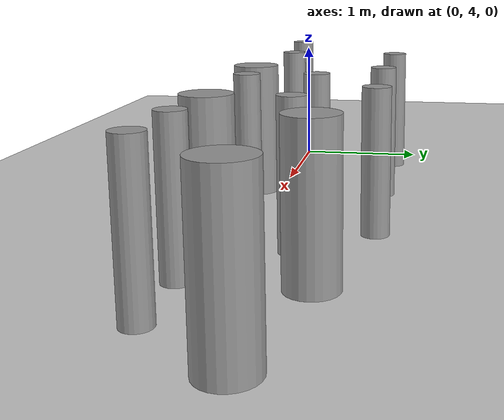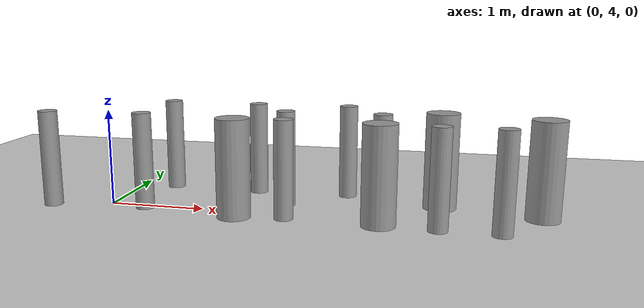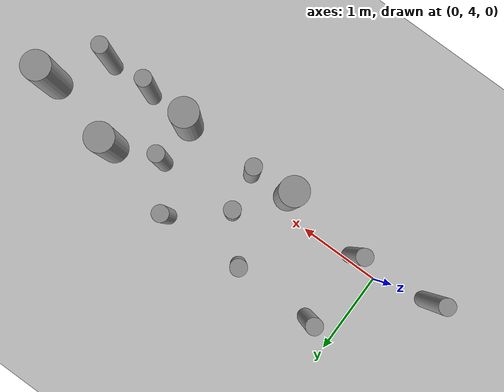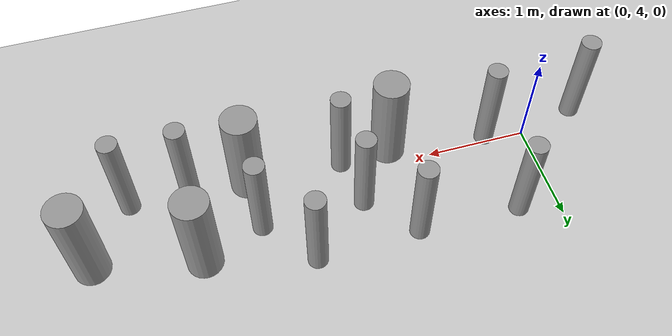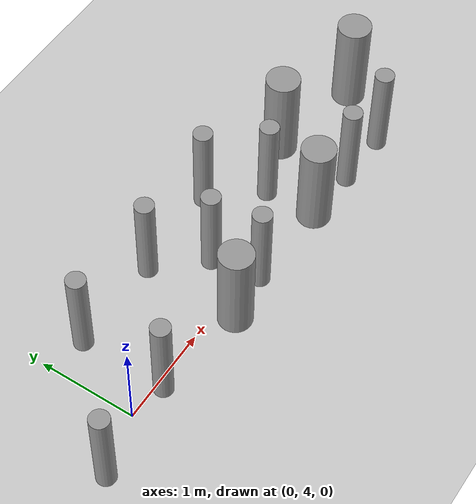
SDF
<sdf version="1.6">
 <world name="default">
  <model name="ground_plane">
   <static>1</static>
   <link name="link">
    <collision name="collision">
     <geometry><plane><normal>0 0 1</normal><size>100 100</size></plane></geometry>
     <surface><friction><ode><mu>100</mu><mu2>50</mu2></ode></friction></surface>
    </collision>
    <visual name="visual">
     <cast_shadows>0</cast_shadows>
     <geometry><plane><normal>0 0 1</normal><size>100 100</size></plane></geometry>
     <material>
      <script><uri>file://media/materials/scripts/gazebo.material</uri><name>Gazebo/Grey</name></script>
     </material>
    </visual>
   </link>
  </model>
  <model name="cyl_wall_clone_clone_3_clone_2">
   <link name="link_0">
    <pose>-2.73893 -0.366465 0 0 -0 0</pose>
    <inertial>
     <mass>0.0374993</mass>
     <inertia>
      <ixx>0.00321281</ixx>
      <ixy>0</ixy>
      <ixz>0</ixz>
      <iyy>0.00321281</iyy>
      <iyz>0</iyz>
      <izz>0.000175774</izz>
     </inertia>
    </inertial>
    <visual name="visual">
     <geometry><cylinder><radius>0.0968661</radius><length>1</length></cylinder></geometry>
     <material>
      <lighting>1</lighting>
      <script><uri>file://media/materials/scripts/gazebo.material</uri><name>Gazebo/Grey</name></script>
      <ambient>0.3 0.3 0.3 1</ambient>
      <diffuse>0.7 0.7 0.7 1</diffuse>
      <specular>0.01 0.01 0.01 1</specular>
      <emissive>0 0 0 1</emissive>
     </material>
    </visual>
    <collision name="collision">
     <geometry><cylinder><radius>0.096866</radius><length>1</length></cylinder></geometry>
     <surface>
      <friction>
       <ode><mu>1</mu><mu2>1</mu2><fdir1>0 0 0</fdir1><slip1>0</slip1><slip2>0</slip2></ode>
       <torsional>
        <coefficient>1</coefficient>
        <patch_radius>0</patch_radius>
        <surface_radius>0</surface_radius>
        <use_patch_radius>1</use_patch_radius>
        <ode><slip>0</slip></ode>
       </torsional>
      </friction>
      <bounce><restitution_coefficient>0</restitution_coefficient><threshold>1e+06</threshold></bounce>
      <contact>
       <collide_without_contact>0</collide_without_contact>
       <collide_without_contact_bitmask>1</collide_without_contact_bitmask>
       <collide_bitmask>1</collide_bitmask>
       <ode>
        <soft_cfm>0</soft_cfm>
        <soft_erp>0.2</soft_erp>
        <kp>1e+13</kp>
        <kd>1</kd>
        <max_vel>0.01</max_vel>
        <min_depth>0</min_depth>
       </ode>
       <bullet>
        <split_impulse>1</split_impulse>
        <split_impulse_penetration_threshold>-0.01</split_impulse_penetration_threshold>
        <soft_cfm>0</soft_cfm>
        <soft_erp>0.2</soft_erp>
        <kp>1e+13</kp>
        <kd>1</kd>
       </bullet>
      </contact>
     </surface>
    </collision>
   </link>
   <link name="link_0_clone">
    <pose>-1.73893 0.61877 0 0 -0 0</pose>
    <inertial>
     <mass>0.0374993</mass>
     <inertia>
      <ixx>0.00321281</ixx>
      <ixy>0</ixy>
      <ixz>0</ixz>
      <iyy>0.00321281</iyy>
      <iyz>0</iyz>
      <izz>0.000175774</izz>
     </inertia>
    </inertial>
    <visual name="visual">
     <geometry><cylinder><radius>0.0968661</radius><length>1</length></cylinder></geometry>
     <material>
      <lighting>1</lighting>
      <script><uri>file://media/materials/scripts/gazebo.material</uri><name>Gazebo/Grey</name></script>
      <ambient>0.3 0.3 0.3 1</ambient>
      <diffuse>0.7 0.7 0.7 1</diffuse>
      <specular>0.01 0.01 0.01 1</specular>
      <emissive>0 0 0 1</emissive>
      <shader type="pixel"/>
     </material>
    </visual>
    <collision name="collision">
     <geometry><cylinder><radius>0.096866</radius><length>1</length></cylinder></geometry>
     <surface>
      <friction>
       <ode><mu>1</mu><mu2>1</mu2><fdir1>0 0 0</fdir1><slip1>0</slip1><slip2>0</slip2></ode>
       <torsional>
        <coefficient>1</coefficient>
        <patch_radius>0</patch_radius>
        <surface_radius>0</surface_radius>
        <use_patch_radius>1</use_patch_radius>
        <ode><slip>0</slip></ode>
       </torsional>
      </friction>
      <bounce><restitution_coefficient>0</restitution_coefficient><threshold>1e+06</threshold></bounce>
      <contact>
       <collide_without_contact>0</collide_without_contact>
       <collide_without_contact_bitmask>1</collide_without_contact_bitmask>
       <collide_bitmask>1</collide_bitmask>
       <ode>
        <soft_cfm>0</soft_cfm>
        <soft_erp>0.2</soft_erp>
        <kp>1e+13</kp>
        <kd>1</kd>
        <max_vel>0.01</max_vel>
        <min_depth>0</min_depth>
       </ode>
       <bullet>
        <split_impulse>1</split_impulse>
        <split_impulse_penetration_threshold>-0.01</split_impulse_penetration_threshold>
        <soft_cfm>0</soft_cfm>
        <soft_erp>0.2</soft_erp>
        <kp>1e+13</kp>
        <kd>1</kd>
       </bullet>
      </contact>
     </surface>
    </collision>
   </link>
   <link name="link_0_clone_clone">
    <pose>-0.327073 0.143919 0 0 -0 0</pose>
    <inertial>
     <mass>0.0374993</mass>
     <inertia>
      <ixx>0.00321281</ixx>
      <ixy>0</ixy>
      <ixz>0</ixz>
      <iyy>0.00321281</iyy>
      <iyz>0</iyz>
      <izz>0.000175774</izz>
     </inertia>
    </inertial>
    <visual name="visual">
     <geometry><cylinder><radius>0.0968661</radius><length>1</length></cylinder></geometry>
     <material>
      <lighting>1</lighting>
      <script><uri>file://media/materials/scripts/gazebo.material</uri><name>Gazebo/Grey</name></script>
      <ambient>0.3 0.3 0.3 1</ambient>
      <diffuse>0.7 0.7 0.7 1</diffuse>
      <specular>0.01 0.01 0.01 1</specular>
      <emissive>0 0 0 1</emissive>
      <shader type="pixel"/>
     </material>
    </visual>
    <collision name="collision">
     <geometry><cylinder><radius>0.096866</radius><length>1</length></cylinder></geometry>
     <surface>
      <friction>
       <ode><mu>1</mu><mu2>1</mu2><fdir1>0 0 0</fdir1><slip1>0</slip1><slip2>0</slip2></ode>
       <torsional>
        <coefficient>1</coefficient>
        <patch_radius>0</patch_radius>
        <surface_radius>0</surface_radius>
        <use_patch_radius>1</use_patch_radius>
        <ode><slip>0</slip></ode>
       </torsional>
      </friction>
      <bounce><restitution_coefficient>0</restitution_coefficient><threshold>1e+06</threshold></bounce>
      <contact>
       <collide_without_contact>0</collide_without_contact>
       <collide_without_contact_bitmask>1</collide_without_contact_bitmask>
       <collide_bitmask>1</collide_bitmask>
       <ode>
        <soft_cfm>0</soft_cfm>
        <soft_erp>0.2</soft_erp>
        <kp>1e+13</kp>
        <kd>1</kd>
        <max_vel>0.01</max_vel>
        <min_depth>0</min_depth>
       </ode>
       <bullet>
        <split_impulse>1</split_impulse>
        <split_impulse_penetration_threshold>-0.01</split_impulse_penetration_threshold>
        <soft_cfm>0</soft_cfm>
        <soft_erp>0.2</soft_erp>
        <kp>1e+13</kp>
        <kd>1</kd>
       </bullet>
      </contact>
     </surface>
    </collision>
   </link>
   <link name="link_0_clone_clone_0">
    <pose>1.26107 -0.419359 0 0 -0 0</pose>
    <inertial>
     <mass>0.0374993</mass>
     <inertia>
      <ixx>0.00321281</ixx>
      <ixy>0</ixy>
      <ixz>0</ixz>
      <iyy>0.00321281</iyy>
      <iyz>0</iyz>
      <izz>0.000175774</izz>
     </inertia>
    </inertial>
    <visual name="visual">
     <geometry><cylinder><radius>0.0968661</radius><length>1</length></cylinder></geometry>
     <material>
      <lighting>1</lighting>
      <script><uri>file://media/materials/scripts/gazebo.material</uri><name>Gazebo/Grey</name></script>
      <ambient>0.3 0.3 0.3 1</ambient>
      <diffuse>0.7 0.7 0.7 1</diffuse>
      <specular>0.01 0.01 0.01 1</specular>
      <emissive>0 0 0 1</emissive>
      <shader type="pixel"/>
     </material>
    </visual>
    <collision name="collision">
     <geometry><cylinder><radius>0.096866</radius><length>1</length></cylinder></geometry>
     <surface>
      <friction>
       <ode><mu>1</mu><mu2>1</mu2><fdir1>0 0 0</fdir1><slip1>0</slip1><slip2>0</slip2></ode>
       <torsional>
        <coefficient>1</coefficient>
        <patch_radius>0</patch_radius>
        <surface_radius>0</surface_radius>
        <use_patch_radius>1</use_patch_radius>
        <ode><slip>0</slip></ode>
       </torsional>
      </friction>
      <bounce><restitution_coefficient>0</restitution_coefficient><threshold>1e+06</threshold></bounce>
      <contact>
       <collide_without_contact>0</collide_without_contact>
       <collide_without_contact_bitmask>1</collide_without_contact_bitmask>
       <collide_bitmask>1</collide_bitmask>
       <ode>
        <soft_cfm>0</soft_cfm>
        <soft_erp>0.2</soft_erp>
        <kp>1e+13</kp>
        <kd>1</kd>
        <max_vel>0.01</max_vel>
        <min_depth>0</min_depth>
       </ode>
       <bullet>
        <split_impulse>1</split_impulse>
        <split_impulse_penetration_threshold>-0.01</split_impulse_penetration_threshold>
        <soft_cfm>0</soft_cfm>
        <soft_erp>0.2</soft_erp>
        <kp>1e+13</kp>
        <kd>1</kd>
       </bullet>
      </contact>
     </surface>
    </collision>
   </link>
   <link name="link_0_clone_clone_1">
    <pose>-1.73893 -0.277168 0 0 -0 0</pose>
    <inertial>
     <mass>0.0374993</mass>
     <inertia>
      <ixx>0.00321281</ixx>
      <ixy>0</ixy>
      <ixz>0</ixz>
      <iyy>0.00321281</iyy>
      <iyz>0</iyz>
      <izz>0.000175774</izz>
     </inertia>
    </inertial>
    <visual name="visual">
     <geometry><cylinder><radius>0.0968661</radius><length>1</length></cylinder></geometry>
     <material>
      <lighting>1</lighting>
      <script><uri>file://media/materials/scripts/gazebo.material</uri><name>Gazebo/Grey</name></script>
      <ambient>0.3 0.3 0.3 1</ambient>
      <diffuse>0.7 0.7 0.7 1</diffuse>
      <specular>0.01 0.01 0.01 1</specular>
      <emissive>0 0 0 1</emissive>
      <shader type="pixel"/>
     </material>
    </visual>
    <collision name="collision">
     <geometry><cylinder><radius>0.096866</radius><length>1</length></cylinder></geometry>
     <surface>
      <friction>
       <ode><mu>1</mu><mu2>1</mu2><fdir1>0 0 0</fdir1><slip1>0</slip1><slip2>0</slip2></ode>
       <torsional>
        <coefficient>1</coefficient>
        <patch_radius>0</patch_radius>
        <surface_radius>0</surface_radius>
        <use_patch_radius>1</use_patch_radius>
        <ode><slip>0</slip></ode>
       </torsional>
      </friction>
      <bounce><restitution_coefficient>0</restitution_coefficient><threshold>1e+06</threshold></bounce>
      <contact>
       <collide_without_contact>0</collide_without_contact>
       <collide_without_contact_bitmask>1</collide_without_contact_bitmask>
       <collide_bitmask>1</collide_bitmask>
       <ode>
        <soft_cfm>0</soft_cfm>
        <soft_erp>0.2</soft_erp>
        <kp>1e+13</kp>
        <kd>1</kd>
        <max_vel>0.01</max_vel>
        <min_depth>0</min_depth>
       </ode>
       <bullet>
        <split_impulse>1</split_impulse>
        <split_impulse_penetration_threshold>-0.01</split_impulse_penetration_threshold>
        <soft_cfm>0</soft_cfm>
        <soft_erp>0.2</soft_erp>
        <kp>1e+13</kp>
        <kd>1</kd>
       </bullet>
      </contact>
     </surface>
    </collision>
   </link>
   <link name="link_0_clone_clone_2">
    <pose>-0.738934 0.593961 0 0 -0 0</pose>
    <inertial>
     <mass>0.0374993</mass>
     <inertia>
      <ixx>0.00321281</ixx>
      <ixy>0</ixy>
      <ixz>0</ixz>
      <iyy>0.00321281</iyy>
      <iyz>0</iyz>
      <izz>0.000175774</izz>
     </inertia>
    </inertial>
    <visual name="visual">
     <geometry><cylinder><radius>0.0968661</radius><length>1</length></cylinder></geometry>
     <material>
      <lighting>1</lighting>
      <script><uri>file://media/materials/scripts/gazebo.material</uri><name>Gazebo/Grey</name></script>
      <ambient>0.3 0.3 0.3 1</ambient>
      <diffuse>0.7 0.7 0.7 1</diffuse>
      <specular>0.01 0.01 0.01 1</specular>
      <emissive>0 0 0 1</emissive>
      <shader type="pixel"/>
     </material>
    </visual>
    <collision name="collision">
     <geometry><cylinder><radius>0.096866</radius><length>1</length></cylinder></geometry>
     <surface>
      <friction>
       <ode><mu>1</mu><mu2>1</mu2><fdir1>0 0 0</fdir1><slip1>0</slip1><slip2>0</slip2></ode>
       <torsional>
        <coefficient>1</coefficient>
        <patch_radius>0</patch_radius>
        <surface_radius>0</surface_radius>
        <use_patch_radius>1</use_patch_radius>
        <ode><slip>0</slip></ode>
       </torsional>
      </friction>
      <bounce><restitution_coefficient>0</restitution_coefficient><threshold>1e+06</threshold></bounce>
      <contact>
       <collide_without_contact>0</collide_without_contact>
       <collide_without_contact_bitmask>1</collide_without_contact_bitmask>
       <collide_bitmask>1</collide_bitmask>
       <ode>
        <soft_cfm>0</soft_cfm>
        <soft_erp>0.2</soft_erp>
        <kp>1e+13</kp>
        <kd>1</kd>
        <max_vel>0.01</max_vel>
        <min_depth>0</min_depth>
       </ode>
       <bullet>
        <split_impulse>1</split_impulse>
        <split_impulse_penetration_threshold>-0.01</split_impulse_penetration_threshold>
        <soft_cfm>0</soft_cfm>
        <soft_erp>0.2</soft_erp>
        <kp>1e+13</kp>
        <kd>1</kd>
       </bullet>
      </contact>
     </surface>
    </collision>
   </link>
   <link name="link_0_clone_clone_3">
    <pose>0.261066 0.624849 0 0 -0 0</pose>
    <inertial>
     <mass>0.0374993</mass>
     <inertia>
      <ixx>0.00321281</ixx>
      <ixy>0</ixy>
      <ixz>0</ixz>
      <iyy>0.00321281</iyy>
      <iyz>0</iyz>
      <izz>0.000175774</izz>
     </inertia>
    </inertial>
    <visual name="visual">
     <geometry><cylinder><radius>0.0968661</radius><length>1</length></cylinder></geometry>
     <material>
      <lighting>1</lighting>
      <script><uri>file://media/materials/scripts/gazebo.material</uri><name>Gazebo/Grey</name></script>
      <ambient>0.3 0.3 0.3 1</ambient>
      <diffuse>0.7 0.7 0.7 1</diffuse>
      <specular>0.01 0.01 0.01 1</specular>
      <emissive>0 0 0 1</emissive>
      <shader type="pixel"/>
     </material>
    </visual>
    <collision name="collision">
     <geometry><cylinder><radius>0.096866</radius><length>1</length></cylinder></geometry>
     <surface>
      <friction>
       <ode><mu>1</mu><mu2>1</mu2><fdir1>0 0 0</fdir1><slip1>0</slip1><slip2>0</slip2></ode>
       <torsional>
        <coefficient>1</coefficient>
        <patch_radius>0</patch_radius>
        <surface_radius>0</surface_radius>
        <use_patch_radius>1</use_patch_radius>
        <ode><slip>0</slip></ode>
       </torsional>
      </friction>
      <bounce><restitution_coefficient>0</restitution_coefficient><threshold>1e+06</threshold></bounce>
      <contact>
       <collide_without_contact>0</collide_without_contact>
       <collide_without_contact_bitmask>1</collide_without_contact_bitmask>
       <collide_bitmask>1</collide_bitmask>
       <ode>
        <soft_cfm>0</soft_cfm>
        <soft_erp>0.2</soft_erp>
        <kp>1e+13</kp>
        <kd>1</kd>
        <max_vel>0.01</max_vel>
        <min_depth>0</min_depth>
       </ode>
       <bullet>
        <split_impulse>1</split_impulse>
        <split_impulse_penetration_threshold>-0.01</split_impulse_penetration_threshold>
        <soft_cfm>0</soft_cfm>
        <soft_erp>0.2</soft_erp>
        <kp>1e+13</kp>
        <kd>1</kd>
       </bullet>
      </contact>
     </surface>
    </collision>
   </link>
   <link name="link_0_clone_clone_4">
    <pose>-0.239049 -0.353105 0 0 -0 0</pose>
    <inertial>
     <mass>0.0374993</mass>
     <inertia>
      <ixx>0.00321281</ixx>
      <ixy>0</ixy>
      <ixz>0</ixz>
      <iyy>0.00321281</iyy>
      <iyz>0</iyz>
      <izz>0.000175774</izz>
     </inertia>
    </inertial>
    <visual name="visual">
     <geometry><cylinder><radius>0.0968661</radius><length>1</length></cylinder></geometry>
     <material>
      <lighting>1</lighting>
      <script><uri>file://media/materials/scripts/gazebo.material</uri><name>Gazebo/Grey</name></script>
      <ambient>0.3 0.3 0.3 1</ambient>
      <diffuse>0.7 0.7 0.7 1</diffuse>
      <specular>0.01 0.01 0.01 1</specular>
      <emissive>0 0 0 1</emissive>
      <shader type="pixel"/>
     </material>
    </visual>
    <collision name="collision">
     <geometry><cylinder><radius>0.096866</radius><length>1</length></cylinder></geometry>
     <surface>
      <friction>
       <ode><mu>1</mu><mu2>1</mu2><fdir1>0 0 0</fdir1><slip1>0</slip1><slip2>0</slip2></ode>
       <torsional>
        <coefficient>1</coefficient>
        <patch_radius>0</patch_radius>
        <surface_radius>0</surface_radius>
        <use_patch_radius>1</use_patch_radius>
        <ode><slip>0</slip></ode>
       </torsional>
      </friction>
      <bounce><restitution_coefficient>0</restitution_coefficient><threshold>1e+06</threshold></bounce>
      <contact>
       <collide_without_contact>0</collide_without_contact>
       <collide_without_contact_bitmask>1</collide_without_contact_bitmask>
       <collide_bitmask>1</collide_bitmask>
       <ode>
        <soft_cfm>0</soft_cfm>
        <soft_erp>0.2</soft_erp>
        <kp>1e+13</kp>
        <kd>1</kd>
        <max_vel>0.01</max_vel>
        <min_depth>0</min_depth>
       </ode>
       <bullet>
        <split_impulse>1</split_impulse>
        <split_impulse_penetration_threshold>-0.01</split_impulse_penetration_threshold>
        <soft_cfm>0</soft_cfm>
        <soft_erp>0.2</soft_erp>
        <kp>1e+13</kp>
        <kd>1</kd>
       </bullet>
      </contact>
     </surface>
    </collision>
   </link>
   <link name="link_0_clone_clone_5">
    <pose>0.672792 0.143919 0 0 -0 0</pose>
    <inertial>
     <mass>0.0374993</mass>
     <inertia>
      <ixx>0.00321281</ixx>
      <ixy>0</ixy>
      <ixz>0</ixz>
      <iyy>0.00321281</iyy>
      <iyz>0</iyz>
      <izz>0.000175774</izz>
     </inertia>
    </inertial>
    <visual name="visual">
     <geometry><cylinder><radius>0.0968661</radius><length>1</length></cylinder></geometry>
     <material>
      <lighting>1</lighting>
      <script><uri>file://media/materials/scripts/gazebo.material</uri><name>Gazebo/Grey</name></script>
      <ambient>0.3 0.3 0.3 1</ambient>
      <diffuse>0.7 0.7 0.7 1</diffuse>
      <specular>0.01 0.01 0.01 1</specular>
      <emissive>0 0 0 1</emissive>
      <shader type="pixel"/>
     </material>
    </visual>
    <collision name="collision">
     <geometry><cylinder><radius>0.096866</radius><length>1</length></cylinder></geometry>
     <surface>
      <friction>
       <ode><mu>1</mu><mu2>1</mu2><fdir1>0 0 0</fdir1><slip1>0</slip1><slip2>0</slip2></ode>
       <torsional>
        <coefficient>1</coefficient>
        <patch_radius>0</patch_radius>
        <surface_radius>0</surface_radius>
        <use_patch_radius>1</use_patch_radius>
        <ode><slip>0</slip></ode>
       </torsional>
      </friction>
      <bounce><restitution_coefficient>0</restitution_coefficient><threshold>1e+06</threshold></bounce>
      <contact>
       <collide_without_contact>0</collide_without_contact>
       <collide_without_contact_bitmask>1</collide_without_contact_bitmask>
       <collide_bitmask>1</collide_bitmask>
       <ode>
        <soft_cfm>0</soft_cfm>
        <soft_erp>0.2</soft_erp>
        <kp>1e+13</kp>
        <kd>1</kd>
        <max_vel>0.01</max_vel>
        <min_depth>0</min_depth>
       </ode>
       <bullet>
        <split_impulse>1</split_impulse>
        <split_impulse_penetration_threshold>-0.01</split_impulse_penetration_threshold>
        <soft_cfm>0</soft_cfm>
        <soft_erp>0.2</soft_erp>
        <kp>1e+13</kp>
        <kd>1</kd>
       </bullet>
      </contact>
     </surface>
    </collision>
   </link>
   <link name="link_0_clone_clone_6">
    <pose>1.84596 -0.433423 0 0 -0 0</pose>
    <inertial>
     <mass>0.0374993</mass>
     <inertia>
      <ixx>0.00321281</ixx>
      <ixy>0</ixy>
      <ixz>0</ixz>
      <iyy>0.00321281</iyy>
      <iyz>0</iyz>
      <izz>0.000175774</izz>
     </inertia>
    </inertial>
    <visual name="visual">
     <geometry><cylinder><radius>0.0968661</radius><length>1</length></cylinder></geometry>
     <material>
      <lighting>1</lighting>
      <script><uri>file://media/materials/scripts/gazebo.material</uri><name>Gazebo/Grey</name></script>
      <ambient>0.3 0.3 0.3 1</ambient>
      <diffuse>0.7 0.7 0.7 1</diffuse>
      <specular>0.01 0.01 0.01 1</specular>
      <emissive>0 0 0 1</emissive>
      <shader type="pixel"/>
     </material>
    </visual>
    <collision name="collision">
     <geometry><cylinder><radius>0.096866</radius><length>1</length></cylinder></geometry>
     <surface>
      <friction>
       <ode><mu>1</mu><mu2>1</mu2><fdir1>0 0 0</fdir1><slip1>0</slip1><slip2>0</slip2></ode>
       <torsional>
        <coefficient>1</coefficient>
        <patch_radius>0</patch_radius>
        <surface_radius>0</surface_radius>
        <use_patch_radius>1</use_patch_radius>
        <ode><slip>0</slip></ode>
       </torsional>
      </friction>
      <bounce><restitution_coefficient>0</restitution_coefficient><threshold>1e+06</threshold></bounce>
      <contact>
       <collide_without_contact>0</collide_without_contact>
       <collide_without_contact_bitmask>1</collide_without_contact_bitmask>
       <collide_bitmask>1</collide_bitmask>
       <ode>
        <soft_cfm>0</soft_cfm>
        <soft_erp>0.2</soft_erp>
        <kp>1e+13</kp>
        <kd>1</kd>
        <max_vel>0.01</max_vel>
        <min_depth>0</min_depth>
       </ode>
       <bullet>
        <split_impulse>1</split_impulse>
        <split_impulse_penetration_threshold>-0.01</split_impulse_penetration_threshold>
        <soft_cfm>0</soft_cfm>
        <soft_erp>0.2</soft_erp>
        <kp>1e+13</kp>
        <kd>1</kd>
       </bullet>
      </contact>
     </surface>
    </collision>
   </link>
   <link name="link_1">
    <pose>-0.738934 -0.397931 0 0 -0 0</pose>
    <inertial>
     <mass>0.117398</mass>
     <inertia>
      <ixx>0.0106445</ixx>
      <ixy>0</ixy>
      <ixz>0</ixz>
      <iyy>0.0106445</iyy>
      <iyz>0</iyz>
      <izz>0.00172278</izz>
     </inertia>
    </inertial>
    <visual name="visual">
     <geometry><cylinder><radius>0.171317</radius><length>1</length></cylinder></geometry>
     <material>
      <lighting>1</lighting>
      <script><uri>file://media/materials/scripts/gazebo.material</uri><name>Gazebo/Grey</name></script>
      <ambient>0.3 0.3 0.3 1</ambient>
      <diffuse>0.7 0.7 0.7 1</diffuse>
      <specular>0.01 0.01 0.01 1</specular>
      <emissive>0 0 0 1</emissive>
     </material>
    </visual>
    <collision name="collision">
     <geometry><cylinder><radius>0.171317</radius><length>1</length></cylinder></geometry>
     <surface>
      <friction>
       <ode><mu>1</mu><mu2>1</mu2><fdir1>0 0 0</fdir1><slip1>0</slip1><slip2>0</slip2></ode>
       <torsional>
        <coefficient>1</coefficient>
        <patch_radius>0</patch_radius>
        <surface_radius>0</surface_radius>
        <use_patch_radius>1</use_patch_radius>
        <ode><slip>0</slip></ode>
       </torsional>
      </friction>
      <bounce><restitution_coefficient>0</restitution_coefficient><threshold>1e+06</threshold></bounce>
      <contact>
       <collide_without_contact>0</collide_without_contact>
       <collide_without_contact_bitmask>1</collide_without_contact_bitmask>
       <collide_bitmask>1</collide_bitmask>
       <ode>
        <soft_cfm>0</soft_cfm>
        <soft_erp>0.2</soft_erp>
        <kp>1e+13</kp>
        <kd>1</kd>
        <max_vel>0.01</max_vel>
        <min_depth>0</min_depth>
       </ode>
       <bullet>
        <split_impulse>1</split_impulse>
        <split_impulse_penetration_threshold>-0.01</split_impulse_penetration_threshold>
        <soft_cfm>0</soft_cfm>
        <soft_erp>0.2</soft_erp>
        <kp>1e+13</kp>
        <kd>1</kd>
       </bullet>
      </contact>
     </surface>
    </collision>
   </link>
   <link name="link_1_clone">
    <pose>0.697784 -0.380861 0 0 -0 0</pose>
    <inertial>
     <mass>0.117398</mass>
     <inertia>
      <ixx>0.0106445</ixx>
      <ixy>0</ixy>
      <ixz>0</ixz>
      <iyy>0.0106445</iyy>
      <iyz>0</iyz>
      <izz>0.00172278</izz>
     </inertia>
    </inertial>
    <visual name="visual">
     <geometry><cylinder><radius>0.171317</radius><length>1</length></cylinder></geometry>
     <material>
      <lighting>1</lighting>
      <script><uri>file://media/materials/scripts/gazebo.material</uri><name>Gazebo/Grey</name></script>
      <ambient>0.3 0.3 0.3 1</ambient>
      <diffuse>0.7 0.7 0.7 1</diffuse>
      <specular>0.01 0.01 0.01 1</specular>
      <emissive>0 0 0 1</emissive>
      <shader type="pixel"/>
     </material>
    </visual>
    <collision name="collision">
     <geometry><cylinder><radius>0.171317</radius><length>1</length></cylinder></geometry>
     <surface>
      <friction>
       <ode><mu>1</mu><mu2>1</mu2><fdir1>0 0 0</fdir1><slip1>0</slip1><slip2>0</slip2></ode>
       <torsional>
        <coefficient>1</coefficient>
        <patch_radius>0</patch_radius>
        <surface_radius>0</surface_radius>
        <use_patch_radius>1</use_patch_radius>
        <ode><slip>0</slip></ode>
       </torsional>
      </friction>
      <bounce><restitution_coefficient>0</restitution_coefficient><threshold>1e+06</threshold></bounce>
      <contact>
       <collide_without_contact>0</collide_without_contact>
       <collide_without_contact_bitmask>1</collide_without_contact_bitmask>
       <collide_bitmask>1</collide_bitmask>
       <ode>
        <soft_cfm>0</soft_cfm>
        <soft_erp>0.2</soft_erp>
        <kp>1e+13</kp>
        <kd>1</kd>
        <max_vel>0.01</max_vel>
        <min_depth>0</min_depth>
       </ode>
       <bullet>
        <split_impulse>1</split_impulse>
        <split_impulse_penetration_threshold>-0.01</split_impulse_penetration_threshold>
        <soft_cfm>0</soft_cfm>
        <soft_erp>0.2</soft_erp>
        <kp>1e+13</kp>
        <kd>1</kd>
       </bullet>
      </contact>
     </surface>
    </collision>
   </link>
   <link name="link_1_clone_0">
    <pose>1.26107 0.358974 0 0 -0 0</pose>
    <inertial>
     <mass>0.117398</mass>
     <inertia>
      <ixx>0.0106445</ixx>
      <ixy>0</ixy>
      <ixz>0</ixz>
      <iyy>0.0106445</iyy>
      <iyz>0</iyz>
      <izz>0.00172278</izz>
     </inertia>
    </inertial>
    <visual name="visual">
     <geometry><cylinder><radius>0.171317</radius><length>1</length></cylinder></geometry>
     <material>
      <lighting>1</lighting>
      <script><uri>file://media/materials/scripts/gazebo.material</uri><name>Gazebo/Grey</name></script>
      <ambient>0.3 0.3 0.3 1</ambient>
      <diffuse>0.7 0.7 0.7 1</diffuse>
      <specular>0.01 0.01 0.01 1</specular>
      <emissive>0 0 0 1</emissive>
      <shader type="pixel"/>
     </material>
    </visual>
    <collision name="collision">
     <geometry><cylinder><radius>0.171317</radius><length>1</length></cylinder></geometry>
     <surface>
      <friction>
       <ode><mu>1</mu><mu2>1</mu2><fdir1>0 0 0</fdir1><slip1>0</slip1><slip2>0</slip2></ode>
       <torsional>
        <coefficient>1</coefficient>
        <patch_radius>0</patch_radius>
        <surface_radius>0</surface_radius>
        <use_patch_radius>1</use_patch_radius>
        <ode><slip>0</slip></ode>
       </torsional>
      </friction>
      <bounce><restitution_coefficient>0</restitution_coefficient><threshold>1e+06</threshold></bounce>
      <contact>
       <collide_without_contact>0</collide_without_contact>
       <collide_without_contact_bitmask>1</collide_without_contact_bitmask>
       <collide_bitmask>1</collide_bitmask>
       <ode>
        <soft_cfm>0</soft_cfm>
        <soft_erp>0.2</soft_erp>
        <kp>1e+13</kp>
        <kd>1</kd>
        <max_vel>0.01</max_vel>
        <min_depth>0</min_depth>
       </ode>
       <bullet>
        <split_impulse>1</split_impulse>
        <split_impulse_penetration_threshold>-0.01</split_impulse_penetration_threshold>
        <soft_cfm>0</soft_cfm>
        <soft_erp>0.2</soft_erp>
        <kp>1e+13</kp>
        <kd>1</kd>
       </bullet>
      </contact>
     </surface>
    </collision>
   </link>
   <link name="link_1_clone_1">
    <pose>2.26107 0.143919 0 0 -0 0</pose>
    <inertial>
     <mass>0.117398</mass>
     <inertia>
      <ixx>0.0106445</ixx>
      <ixy>0</ixy>
      <ixz>0</ixz>
      <iyy>0.0106445</iyy>
      <iyz>0</iyz>
      <izz>0.00172278</izz>
     </inertia>
    </inertial>
    <visual name="visual">
     <geometry><cylinder><radius>0.171317</radius><length>1</length></cylinder></geometry>
     <material>
      <lighting>1</lighting>
      <script><uri>file://media/materials/scripts/gazebo.material</uri><name>Gazebo/Grey</name></script>
      <ambient>0.3 0.3 0.3 1</ambient>
      <diffuse>0.7 0.7 0.7 1</diffuse>
      <specular>0.01 0.01 0.01 1</specular>
      <emissive>0 0 0 1</emissive>
      <shader type="pixel"/>
     </material>
    </visual>
    <collision name="collision">
     <geometry><cylinder><radius>0.171317</radius><length>1</length></cylinder></geometry>
     <surface>
      <friction>
       <ode><mu>1</mu><mu2>1</mu2><fdir1>0 0 0</fdir1><slip1>0</slip1><slip2>0</slip2></ode>
       <torsional>
        <coefficient>1</coefficient>
        <patch_radius>0</patch_radius>
        <surface_radius>0</surface_radius>
        <use_patch_radius>1</use_patch_radius>
        <ode><slip>0</slip></ode>
       </torsional>
      </friction>
      <bounce><restitution_coefficient>0</restitution_coefficient><threshold>1e+06</threshold></bounce>
      <contact>
       <collide_without_contact>0</collide_without_contact>
       <collide_without_contact_bitmask>1</collide_without_contact_bitmask>
       <collide_bitmask>1</collide_bitmask>
       <ode>
        <soft_cfm>0</soft_cfm>
        <soft_erp>0.2</soft_erp>
        <kp>1e+13</kp>
        <kd>1</kd>
        <max_vel>0.01</max_vel>
        <min_depth>0</min_depth>
       </ode>
       <bullet>
        <split_impulse>1</split_impulse>
        <split_impulse_penetration_threshold>-0.01</split_impulse_penetration_threshold>
        <soft_cfm>0</soft_cfm>
        <soft_erp>0.2</soft_erp>
        <kp>1e+13</kp>
        <kd>1</kd>
       </bullet>
      </contact>
     </surface>
    </collision>
   </link>
   <static>1</static>
   <pose>2.13048 4.20945 0.5 0 -0 0</pose>
  </model>
 </world>
</sdf>
